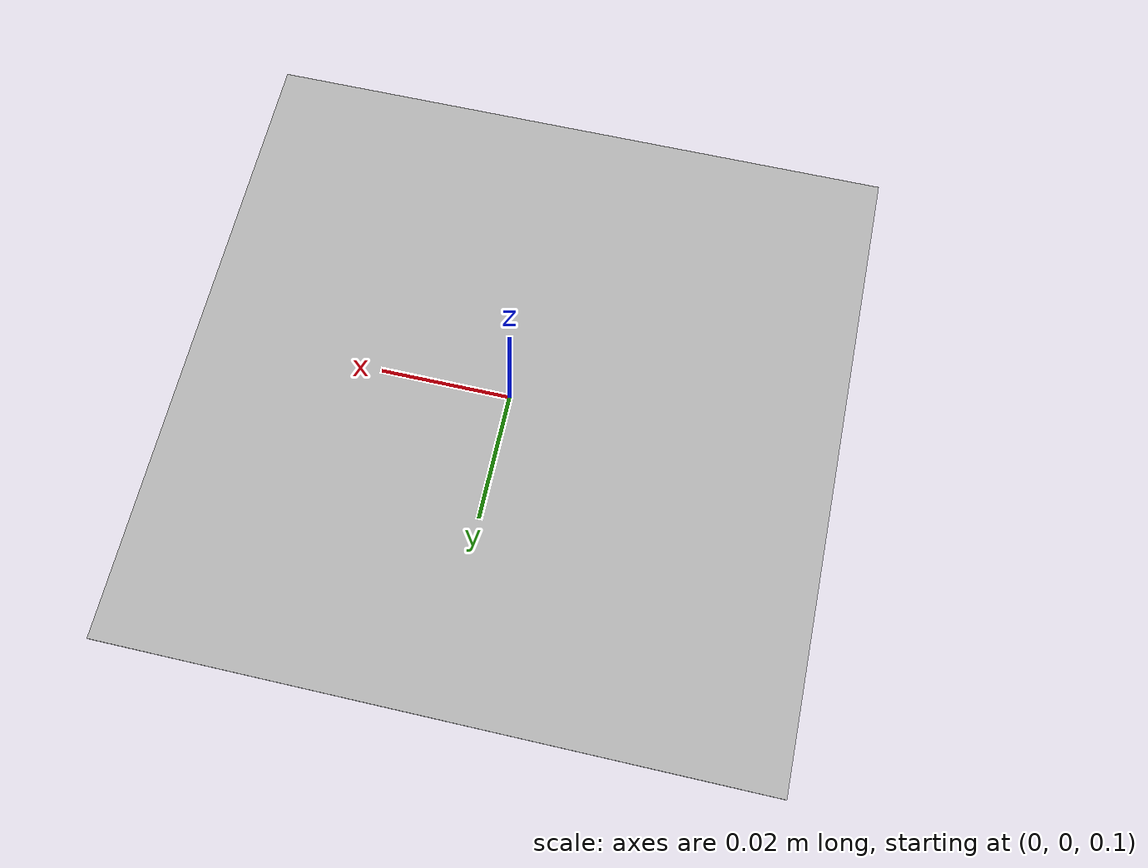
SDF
<?xml version="1.0" ?>
<sdf version="1.4">
  <model name="label">
    <static>true</static>
    <link name="link">
      <pose>0 0 0.1 0 0 0 </pose>
      <gravity>false</gravity>
      <visual name="panel">
        <cast_shadows>false</cast_shadows>
        <geometry>
          <plane>
            <normal>0 0 1</normal>
            <size>0.1 0.1</size>
          </plane>
        </geometry>
	<material>
          <script>
            <uri>model://label/materials/scripts</uri>
            <uri>model://label/materials/textures</uri>
            <name>label/robotino1</name>
          </script>
	</material>
      </visual>
    </link>
  </model>
</sdf>
